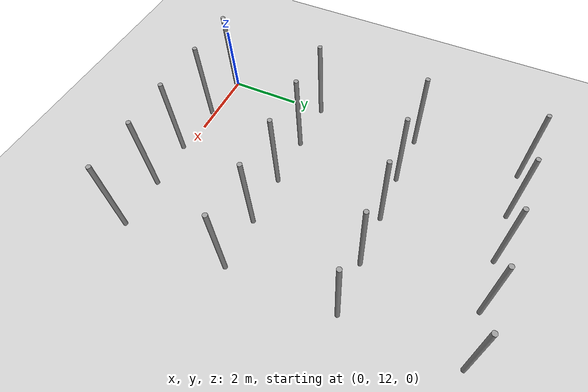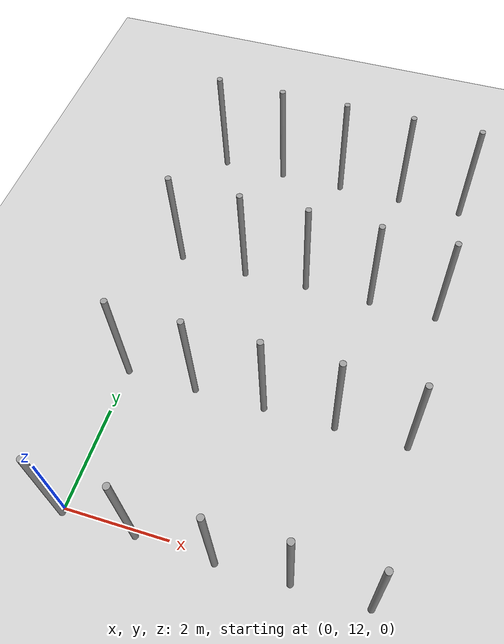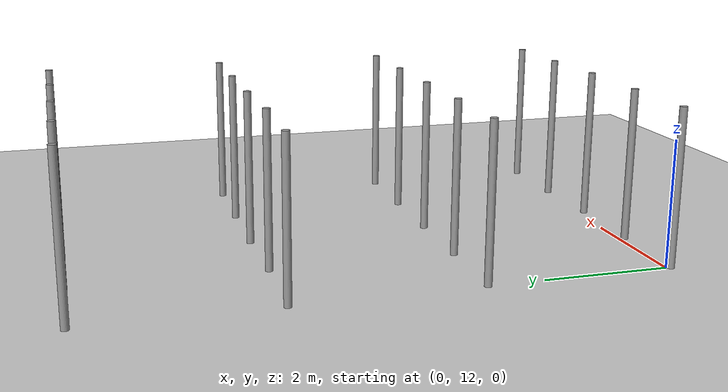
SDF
<sdf version="1.6">
 <world name="default">
  <model name="ground_plane">
   <static>1</static>
   <link name="link">
    <collision name="collision">
     <geometry><plane><normal>0 0 1</normal><size>100 100</size></plane></geometry>
     <surface><friction><ode><mu>100</mu><mu2>50</mu2></ode></friction></surface>
    </collision>
    <visual name="visual">
     <cast_shadows>0</cast_shadows>
     <geometry><plane><normal>0 0 1</normal><size>100 100</size></plane></geometry>
     <material>
      <script><uri>file://media/materials/scripts/gazebo.material</uri><name>Gazebo/Grey</name></script>
     </material>
    </visual>
   </link>
  </model>
  <model name="pole_1">
   <link name="link_0">
    <inertial>
     <mass>0.0364582</mass>
     <inertia>
      <ixx>0.00312124</ixx>
      <ixy>0</ixy>
      <ixz>0</ixz>
      <iyy>0.00312124</iyy>
      <iyz>0</iyz>
      <izz>0.00016615</izz>
     </inertia>
    </inertial>
    <visual name="visual">
     <geometry><cylinder><radius>0.06</radius><length>2.5</length></cylinder></geometry>
     <material>
      <lighting>1</lighting>
      <script><uri>file://media/materials/scripts/gazebo.material</uri><name>Gazebo/Grey</name></script>
      <ambient>0.3 0.3 0.3 1</ambient>
      <diffuse>0.7 0.7 0.7 1</diffuse>
      <specular>0.01 0.01 0.01 1</specular>
      <emissive>0 0 0 1</emissive>
      <shader type="vertex"><normal_map>__default__</normal_map></shader>
     </material>
    </visual>
    <collision name="collision">
     <geometry><cylinder><radius>0.06</radius><length>2.5</length></cylinder></geometry>
     <surface>
      <friction>
       <ode><mu>1</mu><mu2>1</mu2><fdir1>0 0 0</fdir1><slip1>0</slip1><slip2>0</slip2></ode>
       <torsional>
        <coefficient>1</coefficient>
        <patch_radius>0</patch_radius>
        <surface_radius>0</surface_radius>
        <use_patch_radius>1</use_patch_radius>
        <ode><slip>0</slip></ode>
       </torsional>
      </friction>
      <bounce><restitution_coefficient>0</restitution_coefficient><threshold>1e+06</threshold></bounce>
      <contact>
       <collide_without_contact>0</collide_without_contact>
       <collide_without_contact_bitmask>1</collide_without_contact_bitmask>
       <collide_bitmask>1</collide_bitmask>
       <ode>
        <soft_cfm>0</soft_cfm>
        <soft_erp>0.2</soft_erp>
        <kp>1e+13</kp>
        <kd>1</kd>
        <max_vel>0.01</max_vel>
        <min_depth>0</min_depth>
       </ode>
       <bullet>
        <split_impulse>1</split_impulse>
        <split_impulse_penetration_threshold>-0.01</split_impulse_penetration_threshold>
        <soft_cfm>0</soft_cfm>
        <soft_erp>0.2</soft_erp>
        <kp>1e+13</kp>
        <kd>1</kd>
       </bullet>
      </contact>
     </surface>
    </collision>
   </link>
   <static>0</static>
   <pose>-0.007686 11.9243 1.25 0 3e-06 -0.049828</pose>
  </model>
  <model name="pole_2">
   <link name="link_0">
    <inertial>
     <mass>0.0364582</mass>
     <inertia>
      <ixx>0.00312124</ixx>
      <ixy>0</ixy>
      <ixz>0</ixz>
      <iyy>0.00312124</iyy>
      <iyz>0</iyz>
      <izz>0.00016615</izz>
     </inertia>
    </inertial>
    <visual name="visual">
     <geometry><cylinder><radius>0.06</radius><length>2.5</length></cylinder></geometry>
     <material>
      <lighting>1</lighting>
      <script><uri>file://media/materials/scripts/gazebo.material</uri><name>Gazebo/Grey</name></script>
      <ambient>0.3 0.3 0.3 1</ambient>
      <diffuse>0.7 0.7 0.7 1</diffuse>
      <specular>0.01 0.01 0.01 1</specular>
      <emissive>0 0 0 1</emissive>
      <shader type="vertex"><normal_map>__default__</normal_map></shader>
     </material>
    </visual>
    <collision name="collision">
     <geometry><cylinder><radius>0.06</radius><length>2.5</length></cylinder></geometry>
     <surface>
      <friction>
       <ode><mu>1</mu><mu2>1</mu2><fdir1>0 0 0</fdir1><slip1>0</slip1><slip2>0</slip2></ode>
       <torsional>
        <coefficient>1</coefficient>
        <patch_radius>0</patch_radius>
        <surface_radius>0</surface_radius>
        <use_patch_radius>1</use_patch_radius>
        <ode><slip>0</slip></ode>
       </torsional>
      </friction>
      <bounce><restitution_coefficient>0</restitution_coefficient><threshold>1e+06</threshold></bounce>
      <contact>
       <collide_without_contact>0</collide_without_contact>
       <collide_without_contact_bitmask>1</collide_without_contact_bitmask>
       <collide_bitmask>1</collide_bitmask>
       <ode>
        <soft_cfm>0</soft_cfm>
        <soft_erp>0.2</soft_erp>
        <kp>1e+13</kp>
        <kd>1</kd>
        <max_vel>0.01</max_vel>
        <min_depth>0</min_depth>
       </ode>
       <bullet>
        <split_impulse>1</split_impulse>
        <split_impulse_penetration_threshold>-0.01</split_impulse_penetration_threshold>
        <soft_cfm>0</soft_cfm>
        <soft_erp>0.2</soft_erp>
        <kp>1e+13</kp>
        <kd>1</kd>
       </bullet>
      </contact>
     </surface>
    </collision>
   </link>
   <static>0</static>
   <pose>0.00041 14.897 1.24999 0 1e-06 0.188047</pose>
  </model>
  <model name="pole_20">
   <link name="link_0">
    <inertial>
     <mass>0.0364582</mass>
     <inertia>
      <ixx>0.00312124</ixx>
      <ixy>0</ixy>
      <ixz>0</ixz>
      <iyy>0.00312124</iyy>
      <iyz>0</iyz>
      <izz>0.00016615</izz>
     </inertia>
    </inertial>
    <visual name="visual">
     <geometry><cylinder><radius>0.06</radius><length>2.5</length></cylinder></geometry>
     <material>
      <lighting>1</lighting>
      <script><uri>file://media/materials/scripts/gazebo.material</uri><name>Gazebo/Grey</name></script>
      <ambient>0.3 0.3 0.3 1</ambient>
      <diffuse>0.7 0.7 0.7 1</diffuse>
      <specular>0.01 0.01 0.01 1</specular>
      <emissive>0 0 0 1</emissive>
      <shader type="vertex"><normal_map>__default__</normal_map></shader>
     </material>
    </visual>
    <collision name="collision">
     <geometry><cylinder><radius>0.06</radius><length>2.5</length></cylinder></geometry>
     <surface>
      <friction>
       <ode><mu>1</mu><mu2>1</mu2><fdir1>0 0 0</fdir1><slip1>0</slip1><slip2>0</slip2></ode>
       <torsional>
        <coefficient>1</coefficient>
        <patch_radius>0</patch_radius>
        <surface_radius>0</surface_radius>
        <use_patch_radius>1</use_patch_radius>
        <ode><slip>0</slip></ode>
       </torsional>
      </friction>
      <bounce><restitution_coefficient>0</restitution_coefficient><threshold>1e+06</threshold></bounce>
      <contact>
       <collide_without_contact>0</collide_without_contact>
       <collide_without_contact_bitmask>1</collide_without_contact_bitmask>
       <collide_bitmask>1</collide_bitmask>
       <ode>
        <soft_cfm>0</soft_cfm>
        <soft_erp>0.2</soft_erp>
        <kp>1e+13</kp>
        <kd>1</kd>
        <max_vel>0.01</max_vel>
        <min_depth>0</min_depth>
       </ode>
       <bullet>
        <split_impulse>1</split_impulse>
        <split_impulse_penetration_threshold>-0.01</split_impulse_penetration_threshold>
        <soft_cfm>0</soft_cfm>
        <soft_erp>0.2</soft_erp>
        <kp>1e+13</kp>
        <kd>1</kd>
       </bullet>
      </contact>
     </surface>
    </collision>
   </link>
   <static>0</static>
   <pose>1.39618 11.9035 1.24999 1e-06 4e-06 -0.035544</pose>
  </model>
  <model name="pole_21">
   <link name="link_0">
    <inertial>
     <mass>0.0364582</mass>
     <inertia>
      <ixx>0.00312124</ixx>
      <ixy>0</ixy>
      <ixz>0</ixz>
      <iyy>0.00312124</iyy>
      <iyz>0</iyz>
      <izz>0.00016615</izz>
     </inertia>
    </inertial>
    <visual name="visual">
     <geometry><cylinder><radius>0.06</radius><length>2.5</length></cylinder></geometry>
     <material>
      <lighting>1</lighting>
      <script><uri>file://media/materials/scripts/gazebo.material</uri><name>Gazebo/Grey</name></script>
      <ambient>0.3 0.3 0.3 1</ambient>
      <diffuse>0.7 0.7 0.7 1</diffuse>
      <specular>0.01 0.01 0.01 1</specular>
      <emissive>0 0 0 1</emissive>
      <shader type="vertex"><normal_map>__default__</normal_map></shader>
     </material>
    </visual>
    <collision name="collision">
     <geometry><cylinder><radius>0.06</radius><length>2.5</length></cylinder></geometry>
     <surface>
      <friction>
       <ode><mu>1</mu><mu2>1</mu2><fdir1>0 0 0</fdir1><slip1>0</slip1><slip2>0</slip2></ode>
       <torsional>
        <coefficient>1</coefficient>
        <patch_radius>0</patch_radius>
        <surface_radius>0</surface_radius>
        <use_patch_radius>1</use_patch_radius>
        <ode><slip>0</slip></ode>
       </torsional>
      </friction>
      <bounce><restitution_coefficient>0</restitution_coefficient><threshold>1e+06</threshold></bounce>
      <contact>
       <collide_without_contact>0</collide_without_contact>
       <collide_without_contact_bitmask>1</collide_without_contact_bitmask>
       <collide_bitmask>1</collide_bitmask>
       <ode>
        <soft_cfm>0</soft_cfm>
        <soft_erp>0.2</soft_erp>
        <kp>1e+13</kp>
        <kd>1</kd>
        <max_vel>0.01</max_vel>
        <min_depth>0</min_depth>
       </ode>
       <bullet>
        <split_impulse>1</split_impulse>
        <split_impulse_penetration_threshold>-0.01</split_impulse_penetration_threshold>
        <soft_cfm>0</soft_cfm>
        <soft_erp>0.2</soft_erp>
        <kp>1e+13</kp>
        <kd>1</kd>
       </bullet>
      </contact>
     </surface>
    </collision>
   </link>
   <static>0</static>
   <pose>2.87802 11.8602 1.24999 0 1e-06 1.46763</pose>
  </model>
  <model name="pole_22">
   <link name="link_0">
    <inertial>
     <mass>0.0364582</mass>
     <inertia>
      <ixx>0.00312124</ixx>
      <ixy>0</ixy>
      <ixz>0</ixz>
      <iyy>0.00312124</iyy>
      <iyz>0</iyz>
      <izz>0.00016615</izz>
     </inertia>
    </inertial>
    <visual name="visual">
     <geometry><cylinder><radius>0.06</radius><length>2.5</length></cylinder></geometry>
     <material>
      <lighting>1</lighting>
      <script><uri>file://media/materials/scripts/gazebo.material</uri><name>Gazebo/Grey</name></script>
      <ambient>0.3 0.3 0.3 1</ambient>
      <diffuse>0.7 0.7 0.7 1</diffuse>
      <specular>0.01 0.01 0.01 1</specular>
      <emissive>0 0 0 1</emissive>
      <shader type="vertex"><normal_map>__default__</normal_map></shader>
     </material>
    </visual>
    <collision name="collision">
     <geometry><cylinder><radius>0.06</radius><length>2.5</length></cylinder></geometry>
     <surface>
      <friction>
       <ode><mu>1</mu><mu2>1</mu2><fdir1>0 0 0</fdir1><slip1>0</slip1><slip2>0</slip2></ode>
       <torsional>
        <coefficient>1</coefficient>
        <patch_radius>0</patch_radius>
        <surface_radius>0</surface_radius>
        <use_patch_radius>1</use_patch_radius>
        <ode><slip>0</slip></ode>
       </torsional>
      </friction>
      <bounce><restitution_coefficient>0</restitution_coefficient><threshold>1e+06</threshold></bounce>
      <contact>
       <collide_without_contact>0</collide_without_contact>
       <collide_without_contact_bitmask>1</collide_without_contact_bitmask>
       <collide_bitmask>1</collide_bitmask>
       <ode>
        <soft_cfm>0</soft_cfm>
        <soft_erp>0.2</soft_erp>
        <kp>1e+13</kp>
        <kd>1</kd>
        <max_vel>0.01</max_vel>
        <min_depth>0</min_depth>
       </ode>
       <bullet>
        <split_impulse>1</split_impulse>
        <split_impulse_penetration_threshold>-0.01</split_impulse_penetration_threshold>
        <soft_cfm>0</soft_cfm>
        <soft_erp>0.2</soft_erp>
        <kp>1e+13</kp>
        <kd>1</kd>
       </bullet>
      </contact>
     </surface>
    </collision>
   </link>
   <static>0</static>
   <pose>4.21247 11.9035 1.24999 -1e-06 1e-06 -0.035342</pose>
  </model>
  <model name="pole_23">
   <link name="link_0">
    <inertial>
     <mass>0.0364582</mass>
     <inertia>
      <ixx>0.00312124</ixx>
      <ixy>0</ixy>
      <ixz>0</ixz>
      <iyy>0.00312124</iyy>
      <iyz>0</iyz>
      <izz>0.00016615</izz>
     </inertia>
    </inertial>
    <visual name="visual">
     <geometry><cylinder><radius>0.06</radius><length>2.5</length></cylinder></geometry>
     <material>
      <lighting>1</lighting>
      <script><uri>file://media/materials/scripts/gazebo.material</uri><name>Gazebo/Grey</name></script>
      <ambient>0.3 0.3 0.3 1</ambient>
      <diffuse>0.7 0.7 0.7 1</diffuse>
      <specular>0.01 0.01 0.01 1</specular>
      <emissive>0 0 0 1</emissive>
      <shader type="vertex"><normal_map>__default__</normal_map></shader>
     </material>
    </visual>
    <collision name="collision">
     <geometry><cylinder><radius>0.06</radius><length>2.5</length></cylinder></geometry>
     <surface>
      <friction>
       <ode><mu>1</mu><mu2>1</mu2><fdir1>0 0 0</fdir1><slip1>0</slip1><slip2>0</slip2></ode>
       <torsional>
        <coefficient>1</coefficient>
        <patch_radius>0</patch_radius>
        <surface_radius>0</surface_radius>
        <use_patch_radius>1</use_patch_radius>
        <ode><slip>0</slip></ode>
       </torsional>
      </friction>
      <bounce><restitution_coefficient>0</restitution_coefficient><threshold>1e+06</threshold></bounce>
      <contact>
       <collide_without_contact>0</collide_without_contact>
       <collide_without_contact_bitmask>1</collide_without_contact_bitmask>
       <collide_bitmask>1</collide_bitmask>
       <ode>
        <soft_cfm>0</soft_cfm>
        <soft_erp>0.2</soft_erp>
        <kp>1e+13</kp>
        <kd>1</kd>
        <max_vel>0.01</max_vel>
        <min_depth>0</min_depth>
       </ode>
       <bullet>
        <split_impulse>1</split_impulse>
        <split_impulse_penetration_threshold>-0.01</split_impulse_penetration_threshold>
        <soft_cfm>0</soft_cfm>
        <soft_erp>0.2</soft_erp>
        <kp>1e+13</kp>
        <kd>1</kd>
       </bullet>
      </contact>
     </surface>
    </collision>
   </link>
   <static>0</static>
   <pose>5.61648 11.9033 1.25 -1e-06 1e-06 -0.036737</pose>
  </model>
  <model name="pole_24">
   <link name="link_0">
    <inertial>
     <mass>0.0364582</mass>
     <inertia>
      <ixx>0.00312124</ixx>
      <ixy>0</ixy>
      <ixz>0</ixz>
      <iyy>0.00312124</iyy>
      <iyz>0</iyz>
      <izz>0.00016615</izz>
     </inertia>
    </inertial>
    <visual name="visual">
     <geometry><cylinder><radius>0.06</radius><length>2.5</length></cylinder></geometry>
     <material>
      <lighting>1</lighting>
      <script><uri>file://media/materials/scripts/gazebo.material</uri><name>Gazebo/Grey</name></script>
      <ambient>0.3 0.3 0.3 1</ambient>
      <diffuse>0.7 0.7 0.7 1</diffuse>
      <specular>0.01 0.01 0.01 1</specular>
      <emissive>0 0 0 1</emissive>
      <shader type="vertex"><normal_map>__default__</normal_map></shader>
     </material>
    </visual>
    <collision name="collision">
     <geometry><cylinder><radius>0.06</radius><length>2.5</length></cylinder></geometry>
     <surface>
      <friction>
       <ode><mu>1</mu><mu2>1</mu2><fdir1>0 0 0</fdir1><slip1>0</slip1><slip2>0</slip2></ode>
       <torsional>
        <coefficient>1</coefficient>
        <patch_radius>0</patch_radius>
        <surface_radius>0</surface_radius>
        <use_patch_radius>1</use_patch_radius>
        <ode><slip>0</slip></ode>
       </torsional>
      </friction>
      <bounce><restitution_coefficient>0</restitution_coefficient><threshold>1e+06</threshold></bounce>
      <contact>
       <collide_without_contact>0</collide_without_contact>
       <collide_without_contact_bitmask>1</collide_without_contact_bitmask>
       <collide_bitmask>1</collide_bitmask>
       <ode>
        <soft_cfm>0</soft_cfm>
        <soft_erp>0.2</soft_erp>
        <kp>1e+13</kp>
        <kd>1</kd>
        <max_vel>0.01</max_vel>
        <min_depth>0</min_depth>
       </ode>
       <bullet>
        <split_impulse>1</split_impulse>
        <split_impulse_penetration_threshold>-0.01</split_impulse_penetration_threshold>
        <soft_cfm>0</soft_cfm>
        <soft_erp>0.2</soft_erp>
        <kp>1e+13</kp>
        <kd>1</kd>
       </bullet>
      </contact>
     </surface>
    </collision>
   </link>
   <static>0</static>
   <pose>1.40465 14.8834 1.24999 -1e-06 1e-06 -0.010389</pose>
  </model>
  <model name="pole_25">
   <link name="link_0">
    <inertial>
     <mass>0.0364582</mass>
     <inertia>
      <ixx>0.00312124</ixx>
      <ixy>0</ixy>
      <ixz>0</ixz>
      <iyy>0.00312124</iyy>
      <iyz>0</iyz>
      <izz>0.00016615</izz>
     </inertia>
    </inertial>
    <visual name="visual">
     <geometry><cylinder><radius>0.06</radius><length>2.5</length></cylinder></geometry>
     <material>
      <lighting>1</lighting>
      <script><uri>file://media/materials/scripts/gazebo.material</uri><name>Gazebo/Grey</name></script>
      <ambient>0.3 0.3 0.3 1</ambient>
      <diffuse>0.7 0.7 0.7 1</diffuse>
      <specular>0.01 0.01 0.01 1</specular>
      <emissive>0 0 0 1</emissive>
      <shader type="vertex"><normal_map>__default__</normal_map></shader>
     </material>
    </visual>
    <collision name="collision">
     <geometry><cylinder><radius>0.06</radius><length>2.5</length></cylinder></geometry>
     <surface>
      <friction>
       <ode><mu>1</mu><mu2>1</mu2><fdir1>0 0 0</fdir1><slip1>0</slip1><slip2>0</slip2></ode>
       <torsional>
        <coefficient>1</coefficient>
        <patch_radius>0</patch_radius>
        <surface_radius>0</surface_radius>
        <use_patch_radius>1</use_patch_radius>
        <ode><slip>0</slip></ode>
       </torsional>
      </friction>
      <bounce><restitution_coefficient>0</restitution_coefficient><threshold>1e+06</threshold></bounce>
      <contact>
       <collide_without_contact>0</collide_without_contact>
       <collide_without_contact_bitmask>1</collide_without_contact_bitmask>
       <collide_bitmask>1</collide_bitmask>
       <ode>
        <soft_cfm>0</soft_cfm>
        <soft_erp>0.2</soft_erp>
        <kp>1e+13</kp>
        <kd>1</kd>
        <max_vel>0.01</max_vel>
        <min_depth>0</min_depth>
       </ode>
       <bullet>
        <split_impulse>1</split_impulse>
        <split_impulse_penetration_threshold>-0.01</split_impulse_penetration_threshold>
        <soft_cfm>0</soft_cfm>
        <soft_erp>0.2</soft_erp>
        <kp>1e+13</kp>
        <kd>1</kd>
       </bullet>
      </contact>
     </surface>
    </collision>
   </link>
   <static>0</static>
   <pose>2.80812 14.8828 1.25 -1e-06 -1e-06 -0.041376</pose>
  </model>
  <model name="pole_26">
   <link name="link_0">
    <inertial>
     <mass>0.0364582</mass>
     <inertia>
      <ixx>0.00312124</ixx>
      <ixy>0</ixy>
      <ixz>0</ixz>
      <iyy>0.00312124</iyy>
      <iyz>0</iyz>
      <izz>0.00016615</izz>
     </inertia>
    </inertial>
    <visual name="visual">
     <geometry><cylinder><radius>0.06</radius><length>2.5</length></cylinder></geometry>
     <material>
      <lighting>1</lighting>
      <script><uri>file://media/materials/scripts/gazebo.material</uri><name>Gazebo/Grey</name></script>
      <ambient>0.3 0.3 0.3 1</ambient>
      <diffuse>0.7 0.7 0.7 1</diffuse>
      <specular>0.01 0.01 0.01 1</specular>
      <emissive>0 0 0 1</emissive>
      <shader type="vertex"><normal_map>__default__</normal_map></shader>
     </material>
    </visual>
    <collision name="collision">
     <geometry><cylinder><radius>0.06</radius><length>2.5</length></cylinder></geometry>
     <surface>
      <friction>
       <ode><mu>1</mu><mu2>1</mu2><fdir1>0 0 0</fdir1><slip1>0</slip1><slip2>0</slip2></ode>
       <torsional>
        <coefficient>1</coefficient>
        <patch_radius>0</patch_radius>
        <surface_radius>0</surface_radius>
        <use_patch_radius>1</use_patch_radius>
        <ode><slip>0</slip></ode>
       </torsional>
      </friction>
      <bounce><restitution_coefficient>0</restitution_coefficient><threshold>1e+06</threshold></bounce>
      <contact>
       <collide_without_contact>0</collide_without_contact>
       <collide_without_contact_bitmask>1</collide_without_contact_bitmask>
       <collide_bitmask>1</collide_bitmask>
       <ode>
        <soft_cfm>0</soft_cfm>
        <soft_erp>0.2</soft_erp>
        <kp>1e+13</kp>
        <kd>1</kd>
        <max_vel>0.01</max_vel>
        <min_depth>0</min_depth>
       </ode>
       <bullet>
        <split_impulse>1</split_impulse>
        <split_impulse_penetration_threshold>-0.01</split_impulse_penetration_threshold>
        <soft_cfm>0</soft_cfm>
        <soft_erp>0.2</soft_erp>
        <kp>1e+13</kp>
        <kd>1</kd>
       </bullet>
      </contact>
     </surface>
    </collision>
   </link>
   <static>0</static>
   <pose>4.21245 14.8828 1.24999 -1e-06 1e-06 -0.037562</pose>
  </model>
  <model name="pole_27">
   <link name="link_0">
    <inertial>
     <mass>0.0364582</mass>
     <inertia>
      <ixx>0.00312124</ixx>
      <ixy>0</ixy>
      <ixz>0</ixz>
      <iyy>0.00312124</iyy>
      <iyz>0</iyz>
      <izz>0.00016615</izz>
     </inertia>
    </inertial>
    <visual name="visual">
     <geometry><cylinder><radius>0.06</radius><length>2.5</length></cylinder></geometry>
     <material>
      <lighting>1</lighting>
      <script><uri>file://media/materials/scripts/gazebo.material</uri><name>Gazebo/Grey</name></script>
      <ambient>0.3 0.3 0.3 1</ambient>
      <diffuse>0.7 0.7 0.7 1</diffuse>
      <specular>0.01 0.01 0.01 1</specular>
      <emissive>0 0 0 1</emissive>
      <shader type="vertex"><normal_map>__default__</normal_map></shader>
     </material>
    </visual>
    <collision name="collision">
     <geometry><cylinder><radius>0.06</radius><length>2.5</length></cylinder></geometry>
     <surface>
      <friction>
       <ode><mu>1</mu><mu2>1</mu2><fdir1>0 0 0</fdir1><slip1>0</slip1><slip2>0</slip2></ode>
       <torsional>
        <coefficient>1</coefficient>
        <patch_radius>0</patch_radius>
        <surface_radius>0</surface_radius>
        <use_patch_radius>1</use_patch_radius>
        <ode><slip>0</slip></ode>
       </torsional>
      </friction>
      <bounce><restitution_coefficient>0</restitution_coefficient><threshold>1e+06</threshold></bounce>
      <contact>
       <collide_without_contact>0</collide_without_contact>
       <collide_without_contact_bitmask>1</collide_without_contact_bitmask>
       <collide_bitmask>1</collide_bitmask>
       <ode>
        <soft_cfm>0</soft_cfm>
        <soft_erp>0.2</soft_erp>
        <kp>1e+13</kp>
        <kd>1</kd>
        <max_vel>0.01</max_vel>
        <min_depth>0</min_depth>
       </ode>
       <bullet>
        <split_impulse>1</split_impulse>
        <split_impulse_penetration_threshold>-0.01</split_impulse_penetration_threshold>
        <soft_cfm>0</soft_cfm>
        <soft_erp>0.2</soft_erp>
        <kp>1e+13</kp>
        <kd>1</kd>
       </bullet>
      </contact>
     </surface>
    </collision>
   </link>
   <static>0</static>
   <pose>5.62046 14.8831 1.25 -1e-06 3e-06 -0.037068</pose>
  </model>
  <model name="pole_28">
   <link name="link_0">
    <inertial>
     <mass>0.0364582</mass>
     <inertia>
      <ixx>0.00312124</ixx>
      <ixy>0</ixy>
      <ixz>0</ixz>
      <iyy>0.00312124</iyy>
      <iyz>0</iyz>
      <izz>0.00016615</izz>
     </inertia>
    </inertial>
    <visual name="visual">
     <geometry><cylinder><radius>0.06</radius><length>2.5</length></cylinder></geometry>
     <material>
      <lighting>1</lighting>
      <script><uri>file://media/materials/scripts/gazebo.material</uri><name>Gazebo/Grey</name></script>
      <ambient>0.3 0.3 0.3 1</ambient>
      <diffuse>0.7 0.7 0.7 1</diffuse>
      <specular>0.01 0.01 0.01 1</specular>
      <emissive>0 0 0 1</emissive>
      <shader type="vertex"><normal_map>__default__</normal_map></shader>
     </material>
    </visual>
    <collision name="collision">
     <geometry><cylinder><radius>0.06</radius><length>2.5</length></cylinder></geometry>
     <surface>
      <friction>
       <ode><mu>1</mu><mu2>1</mu2><fdir1>0 0 0</fdir1><slip1>0</slip1><slip2>0</slip2></ode>
       <torsional>
        <coefficient>1</coefficient>
        <patch_radius>0</patch_radius>
        <surface_radius>0</surface_radius>
        <use_patch_radius>1</use_patch_radius>
        <ode><slip>0</slip></ode>
       </torsional>
      </friction>
      <bounce><restitution_coefficient>0</restitution_coefficient><threshold>1e+06</threshold></bounce>
      <contact>
       <collide_without_contact>0</collide_without_contact>
       <collide_without_contact_bitmask>1</collide_without_contact_bitmask>
       <collide_bitmask>1</collide_bitmask>
       <ode>
        <soft_cfm>0</soft_cfm>
        <soft_erp>0.2</soft_erp>
        <kp>1e+13</kp>
        <kd>1</kd>
        <max_vel>0.01</max_vel>
        <min_depth>0</min_depth>
       </ode>
       <bullet>
        <split_impulse>1</split_impulse>
        <split_impulse_penetration_threshold>-0.01</split_impulse_penetration_threshold>
        <soft_cfm>0</soft_cfm>
        <soft_erp>0.2</soft_erp>
        <kp>1e+13</kp>
        <kd>1</kd>
       </bullet>
      </contact>
     </surface>
    </collision>
   </link>
   <static>0</static>
   <pose>0.000413 17.8626 1.25 -1e-06 1e-06 -0.031111</pose>
  </model>
  <model name="pole_29">
   <link name="link_0">
    <inertial>
     <mass>0.0364582</mass>
     <inertia>
      <ixx>0.00312124</ixx>
      <ixy>0</ixy>
      <ixz>0</ixz>
      <iyy>0.00312124</iyy>
      <iyz>0</iyz>
      <izz>0.00016615</izz>
     </inertia>
    </inertial>
    <visual name="visual">
     <geometry><cylinder><radius>0.06</radius><length>2.5</length></cylinder></geometry>
     <material>
      <lighting>1</lighting>
      <script><uri>file://media/materials/scripts/gazebo.material</uri><name>Gazebo/Grey</name></script>
      <ambient>0.3 0.3 0.3 1</ambient>
      <diffuse>0.7 0.7 0.7 1</diffuse>
      <specular>0.01 0.01 0.01 1</specular>
      <emissive>0 0 0 1</emissive>
      <shader type="vertex"><normal_map>__default__</normal_map></shader>
     </material>
    </visual>
    <collision name="collision">
     <geometry><cylinder><radius>0.06</radius><length>2.5</length></cylinder></geometry>
     <surface>
      <friction>
       <ode><mu>1</mu><mu2>1</mu2><fdir1>0 0 0</fdir1><slip1>0</slip1><slip2>0</slip2></ode>
       <torsional>
        <coefficient>1</coefficient>
        <patch_radius>0</patch_radius>
        <surface_radius>0</surface_radius>
        <use_patch_radius>1</use_patch_radius>
        <ode><slip>0</slip></ode>
       </torsional>
      </friction>
      <bounce><restitution_coefficient>0</restitution_coefficient><threshold>1e+06</threshold></bounce>
      <contact>
       <collide_without_contact>0</collide_without_contact>
       <collide_without_contact_bitmask>1</collide_without_contact_bitmask>
       <collide_bitmask>1</collide_bitmask>
       <ode>
        <soft_cfm>0</soft_cfm>
        <soft_erp>0.2</soft_erp>
        <kp>1e+13</kp>
        <kd>1</kd>
        <max_vel>0.01</max_vel>
        <min_depth>0</min_depth>
       </ode>
       <bullet>
        <split_impulse>1</split_impulse>
        <split_impulse_penetration_threshold>-0.01</split_impulse_penetration_threshold>
        <soft_cfm>0</soft_cfm>
        <soft_erp>0.2</soft_erp>
        <kp>1e+13</kp>
        <kd>1</kd>
       </bullet>
      </contact>
     </surface>
    </collision>
   </link>
   <static>0</static>
   <pose>1.45738 17.8271 1.25 1e-06 1e-06 1.22611</pose>
  </model>
  <model name="pole_30">
   <link name="link_0">
    <inertial>
     <mass>0.0364582</mass>
     <inertia>
      <ixx>0.00312124</ixx>
      <ixy>0</ixy>
      <ixz>0</ixz>
      <iyy>0.00312124</iyy>
      <iyz>0</iyz>
      <izz>0.00016615</izz>
     </inertia>
    </inertial>
    <visual name="visual">
     <geometry><cylinder><radius>0.06</radius><length>2.5</length></cylinder></geometry>
     <material>
      <lighting>1</lighting>
      <script><uri>file://media/materials/scripts/gazebo.material</uri><name>Gazebo/Grey</name></script>
      <ambient>0.3 0.3 0.3 1</ambient>
      <diffuse>0.7 0.7 0.7 1</diffuse>
      <specular>0.01 0.01 0.01 1</specular>
      <emissive>0 0 0 1</emissive>
      <shader type="vertex"><normal_map>__default__</normal_map></shader>
     </material>
    </visual>
    <collision name="collision">
     <geometry><cylinder><radius>0.06</radius><length>2.5</length></cylinder></geometry>
     <surface>
      <friction>
       <ode><mu>1</mu><mu2>1</mu2><fdir1>0 0 0</fdir1><slip1>0</slip1><slip2>0</slip2></ode>
       <torsional>
        <coefficient>1</coefficient>
        <patch_radius>0</patch_radius>
        <surface_radius>0</surface_radius>
        <use_patch_radius>1</use_patch_radius>
        <ode><slip>0</slip></ode>
       </torsional>
      </friction>
      <bounce><restitution_coefficient>0</restitution_coefficient><threshold>1e+06</threshold></bounce>
      <contact>
       <collide_without_contact>0</collide_without_contact>
       <collide_without_contact_bitmask>1</collide_without_contact_bitmask>
       <collide_bitmask>1</collide_bitmask>
       <ode>
        <soft_cfm>0</soft_cfm>
        <soft_erp>0.2</soft_erp>
        <kp>1e+13</kp>
        <kd>1</kd>
        <max_vel>0.01</max_vel>
        <min_depth>0</min_depth>
       </ode>
       <bullet>
        <split_impulse>1</split_impulse>
        <split_impulse_penetration_threshold>-0.01</split_impulse_penetration_threshold>
        <soft_cfm>0</soft_cfm>
        <soft_erp>0.2</soft_erp>
        <kp>1e+13</kp>
        <kd>1</kd>
       </bullet>
      </contact>
     </surface>
    </collision>
   </link>
   <static>0</static>
   <pose>2.80031 17.8637 1.24999 0 -1e-06 -0.086349</pose>
  </model>
  <model name="pole_31">
   <link name="link_0">
    <inertial>
     <mass>0.0364582</mass>
     <inertia>
      <ixx>0.00312124</ixx>
      <ixy>0</ixy>
      <ixz>0</ixz>
      <iyy>0.00312124</iyy>
      <iyz>0</iyz>
      <izz>0.00016615</izz>
     </inertia>
    </inertial>
    <visual name="visual">
     <geometry><cylinder><radius>0.06</radius><length>2.5</length></cylinder></geometry>
     <material>
      <lighting>1</lighting>
      <script><uri>file://media/materials/scripts/gazebo.material</uri><name>Gazebo/Grey</name></script>
      <ambient>0.3 0.3 0.3 1</ambient>
      <diffuse>0.7 0.7 0.7 1</diffuse>
      <specular>0.01 0.01 0.01 1</specular>
      <emissive>0 0 0 1</emissive>
      <shader type="vertex"><normal_map>__default__</normal_map></shader>
     </material>
    </visual>
    <collision name="collision">
     <geometry><cylinder><radius>0.06</radius><length>2.5</length></cylinder></geometry>
     <surface>
      <friction>
       <ode><mu>1</mu><mu2>1</mu2><fdir1>0 0 0</fdir1><slip1>0</slip1><slip2>0</slip2></ode>
       <torsional>
        <coefficient>1</coefficient>
        <patch_radius>0</patch_radius>
        <surface_radius>0</surface_radius>
        <use_patch_radius>1</use_patch_radius>
        <ode><slip>0</slip></ode>
       </torsional>
      </friction>
      <bounce><restitution_coefficient>0</restitution_coefficient><threshold>1e+06</threshold></bounce>
      <contact>
       <collide_without_contact>0</collide_without_contact>
       <collide_without_contact_bitmask>1</collide_without_contact_bitmask>
       <collide_bitmask>1</collide_bitmask>
       <ode>
        <soft_cfm>0</soft_cfm>
        <soft_erp>0.2</soft_erp>
        <kp>1e+13</kp>
        <kd>1</kd>
        <max_vel>0.01</max_vel>
        <min_depth>0</min_depth>
       </ode>
       <bullet>
        <split_impulse>1</split_impulse>
        <split_impulse_penetration_threshold>-0.01</split_impulse_penetration_threshold>
        <soft_cfm>0</soft_cfm>
        <soft_erp>0.2</soft_erp>
        <kp>1e+13</kp>
        <kd>1</kd>
       </bullet>
      </contact>
     </surface>
    </collision>
   </link>
   <static>0</static>
   <pose>4.20038 17.8625 1.24999 -1e-06 1e-06 -0.027639</pose>
  </model>
  <model name="pole_32">
   <link name="link_0">
    <inertial>
     <mass>0.0364582</mass>
     <inertia>
      <ixx>0.00312124</ixx>
      <ixy>0</ixy>
      <ixz>0</ixz>
      <iyy>0.00312124</iyy>
      <iyz>0</iyz>
      <izz>0.00016615</izz>
     </inertia>
    </inertial>
    <visual name="visual">
     <geometry><cylinder><radius>0.06</radius><length>2.5</length></cylinder></geometry>
     <material>
      <lighting>1</lighting>
      <script><uri>file://media/materials/scripts/gazebo.material</uri><name>Gazebo/Grey</name></script>
      <ambient>0.3 0.3 0.3 1</ambient>
      <diffuse>0.7 0.7 0.7 1</diffuse>
      <specular>0.01 0.01 0.01 1</specular>
      <emissive>0 0 0 1</emissive>
      <shader type="vertex"><normal_map>__default__</normal_map></shader>
     </material>
    </visual>
    <collision name="collision">
     <geometry><cylinder><radius>0.06</radius><length>2.5</length></cylinder></geometry>
     <surface>
      <friction>
       <ode><mu>1</mu><mu2>1</mu2><fdir1>0 0 0</fdir1><slip1>0</slip1><slip2>0</slip2></ode>
       <torsional>
        <coefficient>1</coefficient>
        <patch_radius>0</patch_radius>
        <surface_radius>0</surface_radius>
        <use_patch_radius>1</use_patch_radius>
        <ode><slip>0</slip></ode>
       </torsional>
      </friction>
      <bounce><restitution_coefficient>0</restitution_coefficient><threshold>1e+06</threshold></bounce>
      <contact>
       <collide_without_contact>0</collide_without_contact>
       <collide_without_contact_bitmask>1</collide_without_contact_bitmask>
       <collide_bitmask>1</collide_bitmask>
       <ode>
        <soft_cfm>0</soft_cfm>
        <soft_erp>0.2</soft_erp>
        <kp>1e+13</kp>
        <kd>1</kd>
        <max_vel>0.01</max_vel>
        <min_depth>0</min_depth>
       </ode>
       <bullet>
        <split_impulse>1</split_impulse>
        <split_impulse_penetration_threshold>-0.01</split_impulse_penetration_threshold>
        <soft_cfm>0</soft_cfm>
        <soft_erp>0.2</soft_erp>
        <kp>1e+13</kp>
        <kd>1</kd>
       </bullet>
      </contact>
     </surface>
    </collision>
   </link>
   <static>0</static>
   <pose>5.60034 17.8623 1.24999 0 1e-06 -0.02584</pose>
  </model>
  <model name="pole_33">
   <link name="link_0">
    <inertial>
     <mass>0.0364582</mass>
     <inertia>
      <ixx>0.00312124</ixx>
      <ixy>0</ixy>
      <ixz>0</ixz>
      <iyy>0.00312124</iyy>
      <iyz>0</iyz>
      <izz>0.00016615</izz>
     </inertia>
    </inertial>
    <visual name="visual">
     <geometry><cylinder><radius>0.06</radius><length>2.5</length></cylinder></geometry>
     <material>
      <lighting>1</lighting>
      <script><uri>file://media/materials/scripts/gazebo.material</uri><name>Gazebo/Grey</name></script>
      <ambient>0.3 0.3 0.3 1</ambient>
      <diffuse>0.7 0.7 0.7 1</diffuse>
      <specular>0.01 0.01 0.01 1</specular>
      <emissive>0 0 0 1</emissive>
      <shader type="vertex"><normal_map>__default__</normal_map></shader>
     </material>
    </visual>
    <collision name="collision">
     <geometry><cylinder><radius>0.06</radius><length>2.5</length></cylinder></geometry>
     <surface>
      <friction>
       <ode><mu>1</mu><mu2>1</mu2><fdir1>0 0 0</fdir1><slip1>0</slip1><slip2>0</slip2></ode>
       <torsional>
        <coefficient>1</coefficient>
        <patch_radius>0</patch_radius>
        <surface_radius>0</surface_radius>
        <use_patch_radius>1</use_patch_radius>
        <ode><slip>0</slip></ode>
       </torsional>
      </friction>
      <bounce><restitution_coefficient>0</restitution_coefficient><threshold>1e+06</threshold></bounce>
      <contact>
       <collide_without_contact>0</collide_without_contact>
       <collide_without_contact_bitmask>1</collide_without_contact_bitmask>
       <collide_bitmask>1</collide_bitmask>
       <ode>
        <soft_cfm>0</soft_cfm>
        <soft_erp>0.2</soft_erp>
        <kp>1e+13</kp>
        <kd>1</kd>
        <max_vel>0.01</max_vel>
        <min_depth>0</min_depth>
       </ode>
       <bullet>
        <split_impulse>1</split_impulse>
        <split_impulse_penetration_threshold>-0.01</split_impulse_penetration_threshold>
        <soft_cfm>0</soft_cfm>
        <soft_erp>0.2</soft_erp>
        <kp>1e+13</kp>
        <kd>1</kd>
       </bullet>
      </contact>
     </surface>
    </collision>
   </link>
   <static>0</static>
   <pose>0.000382 20.8427 1.25 -1e-06 -2e-06 -0.031181</pose>
  </model>
  <model name="pole_34">
   <link name="link_0">
    <inertial>
     <mass>0.0364582</mass>
     <inertia>
      <ixx>0.00312124</ixx>
      <ixy>0</ixy>
      <ixz>0</ixz>
      <iyy>0.00312124</iyy>
      <iyz>0</iyz>
      <izz>0.00016615</izz>
     </inertia>
    </inertial>
    <visual name="visual">
     <geometry><cylinder><radius>0.06</radius><length>2.5</length></cylinder></geometry>
     <material>
      <lighting>1</lighting>
      <script><uri>file://media/materials/scripts/gazebo.material</uri><name>Gazebo/Grey</name></script>
      <ambient>0.3 0.3 0.3 1</ambient>
      <diffuse>0.7 0.7 0.7 1</diffuse>
      <specular>0.01 0.01 0.01 1</specular>
      <emissive>0 0 0 1</emissive>
      <shader type="vertex"><normal_map>__default__</normal_map></shader>
     </material>
    </visual>
    <collision name="collision">
     <geometry><cylinder><radius>0.06</radius><length>2.5</length></cylinder></geometry>
     <surface>
      <friction>
       <ode><mu>1</mu><mu2>1</mu2><fdir1>0 0 0</fdir1><slip1>0</slip1><slip2>0</slip2></ode>
       <torsional>
        <coefficient>1</coefficient>
        <patch_radius>0</patch_radius>
        <surface_radius>0</surface_radius>
        <use_patch_radius>1</use_patch_radius>
        <ode><slip>0</slip></ode>
       </torsional>
      </friction>
      <bounce><restitution_coefficient>0</restitution_coefficient><threshold>1e+06</threshold></bounce>
      <contact>
       <collide_without_contact>0</collide_without_contact>
       <collide_without_contact_bitmask>1</collide_without_contact_bitmask>
       <collide_bitmask>1</collide_bitmask>
       <ode>
        <soft_cfm>0</soft_cfm>
        <soft_erp>0.2</soft_erp>
        <kp>1e+13</kp>
        <kd>1</kd>
        <max_vel>0.01</max_vel>
        <min_depth>0</min_depth>
       </ode>
       <bullet>
        <split_impulse>1</split_impulse>
        <split_impulse_penetration_threshold>-0.01</split_impulse_penetration_threshold>
        <soft_cfm>0</soft_cfm>
        <soft_erp>0.2</soft_erp>
        <kp>1e+13</kp>
        <kd>1</kd>
       </bullet>
      </contact>
     </surface>
    </collision>
   </link>
   <static>0</static>
   <pose>1.40033 20.8423 1.24999 1e-06 -6e-06 -0.023803</pose>
  </model>
  <model name="pole_35">
   <link name="link_0">
    <inertial>
     <mass>0.0364582</mass>
     <inertia>
      <ixx>0.00312124</ixx>
      <ixy>0</ixy>
      <ixz>0</ixz>
      <iyy>0.00312124</iyy>
      <iyz>0</iyz>
      <izz>0.00016615</izz>
     </inertia>
    </inertial>
    <visual name="visual">
     <geometry><cylinder><radius>0.06</radius><length>2.5</length></cylinder></geometry>
     <material>
      <lighting>1</lighting>
      <script><uri>file://media/materials/scripts/gazebo.material</uri><name>Gazebo/Grey</name></script>
      <ambient>0.3 0.3 0.3 1</ambient>
      <diffuse>0.7 0.7 0.7 1</diffuse>
      <specular>0.01 0.01 0.01 1</specular>
      <emissive>0 0 0 1</emissive>
      <shader type="vertex"><normal_map>__default__</normal_map></shader>
     </material>
    </visual>
    <collision name="collision">
     <geometry><cylinder><radius>0.06</radius><length>2.5</length></cylinder></geometry>
     <surface>
      <friction>
       <ode><mu>1</mu><mu2>1</mu2><fdir1>0 0 0</fdir1><slip1>0</slip1><slip2>0</slip2></ode>
       <torsional>
        <coefficient>1</coefficient>
        <patch_radius>0</patch_radius>
        <surface_radius>0</surface_radius>
        <use_patch_radius>1</use_patch_radius>
        <ode><slip>0</slip></ode>
       </torsional>
      </friction>
      <bounce><restitution_coefficient>0</restitution_coefficient><threshold>1e+06</threshold></bounce>
      <contact>
       <collide_without_contact>0</collide_without_contact>
       <collide_without_contact_bitmask>1</collide_without_contact_bitmask>
       <collide_bitmask>1</collide_bitmask>
       <ode>
        <soft_cfm>0</soft_cfm>
        <soft_erp>0.2</soft_erp>
        <kp>1e+13</kp>
        <kd>1</kd>
        <max_vel>0.01</max_vel>
        <min_depth>0</min_depth>
       </ode>
       <bullet>
        <split_impulse>1</split_impulse>
        <split_impulse_penetration_threshold>-0.01</split_impulse_penetration_threshold>
        <soft_cfm>0</soft_cfm>
        <soft_erp>0.2</soft_erp>
        <kp>1e+13</kp>
        <kd>1</kd>
       </bullet>
      </contact>
     </surface>
    </collision>
   </link>
   <static>0</static>
   <pose>2.80031 20.8423 1.24999 0 -1e-06 -0.025506</pose>
  </model>
  <model name="pole_36">
   <link name="link_0">
    <inertial>
     <mass>0.0364582</mass>
     <inertia>
      <ixx>0.00312124</ixx>
      <ixy>0</ixy>
      <ixz>0</ixz>
      <iyy>0.00312124</iyy>
      <iyz>0</iyz>
      <izz>0.00016615</izz>
     </inertia>
    </inertial>
    <visual name="visual">
     <geometry><cylinder><radius>0.06</radius><length>2.5</length></cylinder></geometry>
     <material>
      <lighting>1</lighting>
      <script><uri>file://media/materials/scripts/gazebo.material</uri><name>Gazebo/Grey</name></script>
      <ambient>0.3 0.3 0.3 1</ambient>
      <diffuse>0.7 0.7 0.7 1</diffuse>
      <specular>0.01 0.01 0.01 1</specular>
      <emissive>0 0 0 1</emissive>
      <shader type="vertex"><normal_map>__default__</normal_map></shader>
     </material>
    </visual>
    <collision name="collision">
     <geometry><cylinder><radius>0.06</radius><length>2.5</length></cylinder></geometry>
     <surface>
      <friction>
       <ode><mu>1</mu><mu2>1</mu2><fdir1>0 0 0</fdir1><slip1>0</slip1><slip2>0</slip2></ode>
       <torsional>
        <coefficient>1</coefficient>
        <patch_radius>0</patch_radius>
        <surface_radius>0</surface_radius>
        <use_patch_radius>1</use_patch_radius>
        <ode><slip>0</slip></ode>
       </torsional>
      </friction>
      <bounce><restitution_coefficient>0</restitution_coefficient><threshold>1e+06</threshold></bounce>
      <contact>
       <collide_without_contact>0</collide_without_contact>
       <collide_without_contact_bitmask>1</collide_without_contact_bitmask>
       <collide_bitmask>1</collide_bitmask>
       <ode>
        <soft_cfm>0</soft_cfm>
        <soft_erp>0.2</soft_erp>
        <kp>1e+13</kp>
        <kd>1</kd>
        <max_vel>0.01</max_vel>
        <min_depth>0</min_depth>
       </ode>
       <bullet>
        <split_impulse>1</split_impulse>
        <split_impulse_penetration_threshold>-0.01</split_impulse_penetration_threshold>
        <soft_cfm>0</soft_cfm>
        <soft_erp>0.2</soft_erp>
        <kp>1e+13</kp>
        <kd>1</kd>
       </bullet>
      </contact>
     </surface>
    </collision>
   </link>
   <static>0</static>
   <pose>4.20034 20.8423 1.24999 -1e-06 1e-06 -0.026492</pose>
  </model>
  <model name="pole_37">
   <link name="link_0">
    <inertial>
     <mass>0.0364582</mass>
     <inertia>
      <ixx>0.00312124</ixx>
      <ixy>0</ixy>
      <ixz>0</ixz>
      <iyy>0.00312124</iyy>
      <iyz>0</iyz>
      <izz>0.00016615</izz>
     </inertia>
    </inertial>
    <visual name="visual">
     <geometry><cylinder><radius>0.06</radius><length>2.5</length></cylinder></geometry>
     <material>
      <lighting>1</lighting>
      <script><uri>file://media/materials/scripts/gazebo.material</uri><name>Gazebo/Grey</name></script>
      <ambient>0.3 0.3 0.3 1</ambient>
      <diffuse>0.7 0.7 0.7 1</diffuse>
      <specular>0.01 0.01 0.01 1</specular>
      <emissive>0 0 0 1</emissive>
      <shader type="vertex"><normal_map>__default__</normal_map></shader>
     </material>
    </visual>
    <collision name="collision">
     <geometry><cylinder><radius>0.06</radius><length>2.5</length></cylinder></geometry>
     <surface>
      <friction>
       <ode><mu>1</mu><mu2>1</mu2><fdir1>0 0 0</fdir1><slip1>0</slip1><slip2>0</slip2></ode>
       <torsional>
        <coefficient>1</coefficient>
        <patch_radius>0</patch_radius>
        <surface_radius>0</surface_radius>
        <use_patch_radius>1</use_patch_radius>
        <ode><slip>0</slip></ode>
       </torsional>
      </friction>
      <bounce><restitution_coefficient>0</restitution_coefficient><threshold>1e+06</threshold></bounce>
      <contact>
       <collide_without_contact>0</collide_without_contact>
       <collide_without_contact_bitmask>1</collide_without_contact_bitmask>
       <collide_bitmask>1</collide_bitmask>
       <ode>
        <soft_cfm>0</soft_cfm>
        <soft_erp>0.2</soft_erp>
        <kp>1e+13</kp>
        <kd>1</kd>
        <max_vel>0.01</max_vel>
        <min_depth>0</min_depth>
       </ode>
       <bullet>
        <split_impulse>1</split_impulse>
        <split_impulse_penetration_threshold>-0.01</split_impulse_penetration_threshold>
        <soft_cfm>0</soft_cfm>
        <soft_erp>0.2</soft_erp>
        <kp>1e+13</kp>
        <kd>1</kd>
       </bullet>
      </contact>
     </surface>
    </collision>
   </link>
   <static>0</static>
   <pose>5.60034 20.8425 1.25 1e-06 -1e-06 -0.026835</pose>
  </model>
 </world>
</sdf>
